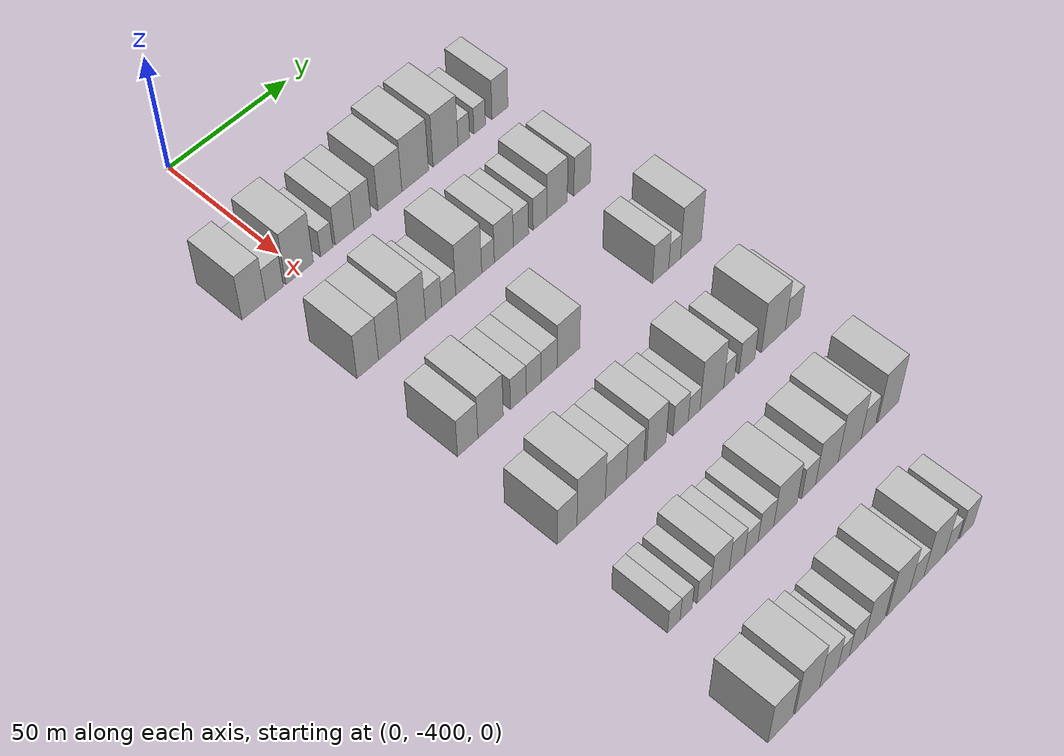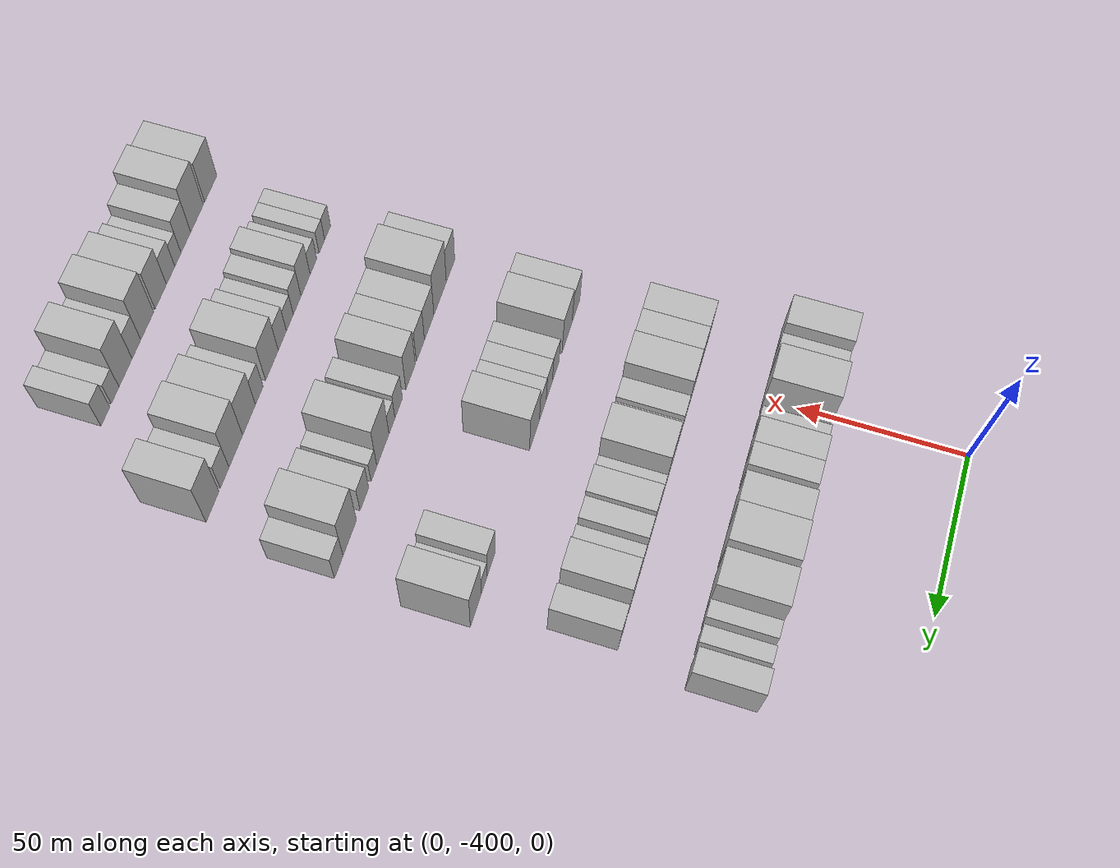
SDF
<sdf version="1.6">
 <world name="default">
  <model name="building_20">
   <static>1</static>
   <pose>50.0000 -419.3856 0 0.000000 0.000000 0.000000</pose>
   <link name="link">
    <pose>0 0 10.50 0 0 0</pose>
    <collision name="collision"><geometry><box><size>20.0000 9.5082 21.0000</size></box></geometry></collision>
    <visual name="visual">
     <cast_shadows>0</cast_shadows>
     <geometry><box><size>20.0000 9.5082 21.0000</size></box></geometry>
     <material>
      <script>
       <uri>model://HANNAS_wall/materials/scripts</uri>
       <uri>model://HANNAS_wall/materials/textures</uri>
       <name>vrc/HANNAS_wall</name>
      </script>
     </material>
    </visual>
   </link>
  </model>
  <model name="building_21">
   <static>1</static>
   <pose>50.0000 -411.0206 0 0.000000 0.000000 0.000000</pose>
   <link name="link">
    <pose>0 0 7.50 0 0 0</pose>
    <collision name="collision"><geometry><box><size>20.0000 7.2218 15.0000</size></box></geometry></collision>
    <visual name="visual">
     <cast_shadows>0</cast_shadows>
     <geometry><box><size>20.0000 7.2218 15.0000</size></box></geometry>
     <material>
      <script>
       <uri>model://HANNAS_wall/materials/scripts</uri>
       <uri>model://HANNAS_wall/materials/textures</uri>
       <name>vrc/HANNAS_wall</name>
      </script>
     </material>
    </visual>
   </link>
  </model>
  <model name="building_22">
   <static>1</static>
   <pose>50.0000 -400.7315 0 0.000000 0.000000 0.000000</pose>
   <link name="link">
    <pose>0 0 12.00 0 0 0</pose>
    <collision name="collision"><geometry><box><size>20.0000 11.3565 24.0000</size></box></geometry></collision>
    <visual name="visual">
     <cast_shadows>0</cast_shadows>
     <geometry><box><size>20.0000 11.3565 24.0000</size></box></geometry>
     <material>
      <script>
       <uri>model://HANNAS_wall/materials/scripts</uri>
       <uri>model://HANNAS_wall/materials/textures</uri>
       <name>vrc/HANNAS_wall</name>
      </script>
     </material>
    </visual>
   </link>
  </model>
  <model name="building_23">
   <static>1</static>
   <pose>50.0000 -389.5145 0 0.000000 0.000000 0.000000</pose>
   <link name="link">
    <pose>0 0 6.00 0 0 0</pose>
    <collision name="collision"><geometry><box><size>20.0000 5.0775 12.0000</size></box></geometry></collision>
    <visual name="visual">
     <cast_shadows>0</cast_shadows>
     <geometry><box><size>20.0000 5.0775 12.0000</size></box></geometry>
     <material>
      <script>
       <uri>model://HANNAS_wall/materials/scripts</uri>
       <uri>model://HANNAS_wall/materials/textures</uri>
       <name>vrc/HANNAS_wall</name>
      </script>
     </material>
    </visual>
   </link>
  </model>
  <model name="building_24">
   <static>1</static>
   <pose>50.0000 -382.0043 0 0.000000 0.000000 0.000000</pose>
   <link name="link">
    <pose>0 0 9.00 0 0 0</pose>
    <collision name="collision"><geometry><box><size>20.0000 7.9430 18.0000</size></box></geometry></collision>
    <visual name="visual">
     <cast_shadows>0</cast_shadows>
     <geometry><box><size>20.0000 7.9430 18.0000</size></box></geometry>
     <material>
      <script>
       <uri>model://HANNAS_wall/materials/scripts</uri>
       <uri>model://HANNAS_wall/materials/textures</uri>
       <name>vrc/HANNAS_wall</name>
      </script>
     </material>
    </visual>
   </link>
  </model>
  <model name="building_25">
   <static>1</static>
   <pose>50.0000 -374.4099 0 0.000000 0.000000 0.000000</pose>
   <link name="link">
    <pose>0 0 9.00 0 0 0</pose>
    <collision name="collision"><geometry><box><size>20.0000 7.2458 18.0000</size></box></geometry></collision>
    <visual name="visual">
     <cast_shadows>0</cast_shadows>
     <geometry><box><size>20.0000 7.2458 18.0000</size></box></geometry>
     <material>
      <script>
       <uri>model://HANNAS_wall/materials/scripts</uri>
       <uri>model://HANNAS_wall/materials/textures</uri>
       <name>vrc/HANNAS_wall</name>
      </script>
     </material>
    </visual>
   </link>
  </model>
  <model name="building_26">
   <static>1</static>
   <pose>50.0000 -362.6268 0 0.000000 0.000000 0.000000</pose>
   <link name="link">
    <pose>0 0 10.50 0 0 0</pose>
    <collision name="collision"><geometry><box><size>20.0000 10.3205 21.0000</size></box></geometry></collision>
    <visual name="visual">
     <cast_shadows>0</cast_shadows>
     <geometry><box><size>20.0000 10.3205 21.0000</size></box></geometry>
     <material>
      <script>
       <uri>model://HANNAS_wall/materials/scripts</uri>
       <uri>model://HANNAS_wall/materials/textures</uri>
       <name>vrc/HANNAS_wall</name>
      </script>
     </material>
    </visual>
   </link>
  </model>
  <model name="building_27">
   <static>1</static>
   <pose>50.0000 -351.6223 0 0.000000 0.000000 0.000000</pose>
   <link name="link">
    <pose>0 0 12.00 0 0 0</pose>
    <collision name="collision"><geometry><box><size>20.0000 11.6884 24.0000</size></box></geometry></collision>
    <visual name="visual">
     <cast_shadows>0</cast_shadows>
     <geometry><box><size>20.0000 11.6884 24.0000</size></box></geometry>
     <material>
      <script>
       <uri>model://HANNAS_wall/materials/scripts</uri>
       <uri>model://HANNAS_wall/materials/textures</uri>
       <name>vrc/HANNAS_wall</name>
      </script>
     </material>
    </visual>
   </link>
  </model>
  <model name="building_28">
   <static>1</static>
   <pose>50.0000 -338.2226 0 0.000000 0.000000 0.000000</pose>
   <link name="link">
    <pose>0 0 12.00 0 0 0</pose>
    <collision name="collision"><geometry><box><size>20.0000 11.1111 24.0000</size></box></geometry></collision>
    <visual name="visual">
     <cast_shadows>0</cast_shadows>
     <geometry><box><size>20.0000 11.1111 24.0000</size></box></geometry>
     <material>
      <script>
       <uri>model://HANNAS_wall/materials/scripts</uri>
       <uri>model://HANNAS_wall/materials/textures</uri>
       <name>vrc/HANNAS_wall</name>
      </script>
     </material>
    </visual>
   </link>
  </model>
  <model name="building_29">
   <static>1</static>
   <pose>50.0000 -330.0581 0 0.000000 0.000000 0.000000</pose>
   <link name="link">
    <pose>0 0 6.00 0 0 0</pose>
    <collision name="collision"><geometry><box><size>20.0000 5.2180 12.0000</size></box></geometry></collision>
    <visual name="visual">
     <cast_shadows>0</cast_shadows>
     <geometry><box><size>20.0000 5.2180 12.0000</size></box></geometry>
     <material>
      <script>
       <uri>model://HANNAS_wall/materials/scripts</uri>
       <uri>model://HANNAS_wall/materials/textures</uri>
       <name>vrc/HANNAS_wall</name>
      </script>
     </material>
    </visual>
   </link>
  </model>
  <model name="building_30">
   <static>1</static>
   <pose>50.0000 -322.8479 0 0.000000 0.000000 0.000000</pose>
   <link name="link">
    <pose>0 0 6.00 0 0 0</pose>
    <collision name="collision"><geometry><box><size>20.0000 5.2024 12.0000</size></box></geometry></collision>
    <visual name="visual">
     <cast_shadows>0</cast_shadows>
     <geometry><box><size>20.0000 5.2024 12.0000</size></box></geometry>
     <material>
      <script>
       <uri>model://HANNAS_wall/materials/scripts</uri>
       <uri>model://HANNAS_wall/materials/textures</uri>
       <name>vrc/HANNAS_wall</name>
      </script>
     </material>
    </visual>
   </link>
  </model>
  <model name="building_31">
   <static>1</static>
   <pose>50.0000 -313.6029 0 0.000000 0.000000 0.000000</pose>
   <link name="link">
    <pose>0 0 9.00 0 0 0</pose>
    <collision name="collision"><geometry><box><size>20.0000 7.2876 18.0000</size></box></geometry></collision>
    <visual name="visual">
     <cast_shadows>0</cast_shadows>
     <geometry><box><size>20.0000 7.2876 18.0000</size></box></geometry>
     <material>
      <script>
       <uri>model://HANNAS_wall/materials/scripts</uri>
       <uri>model://HANNAS_wall/materials/textures</uri>
       <name>vrc/HANNAS_wall</name>
      </script>
     </material>
    </visual>
   </link>
  </model>
  <model name="building_163">
   <static>1</static>
   <pose>90.0000 -411.3350 0 0.000000 0.000000 0.000000</pose>
   <link name="link">
    <pose>0 0 10.50 0 0 0</pose>
    <collision name="collision"><geometry><box><size>20.0000 8.7779 21.0000</size></box></geometry></collision>
    <visual name="visual">
     <cast_shadows>0</cast_shadows>
     <geometry><box><size>20.0000 8.7779 21.0000</size></box></geometry>
     <material>
      <script>
       <uri>model://HANNAS_wall/materials/scripts</uri>
       <uri>model://HANNAS_wall/materials/textures</uri>
       <name>vrc/HANNAS_wall</name>
      </script>
     </material>
    </visual>
   </link>
  </model>
  <model name="building_164">
   <static>1</static>
   <pose>90.0000 -402.4201 0 0.000000 0.000000 0.000000</pose>
   <link name="link">
    <pose>0 0 10.50 0 0 0</pose>
    <collision name="collision"><geometry><box><size>20.0000 9.0518 21.0000</size></box></geometry></collision>
    <visual name="visual">
     <cast_shadows>0</cast_shadows>
     <geometry><box><size>20.0000 9.0518 21.0000</size></box></geometry>
     <material>
      <script>
       <uri>model://HANNAS_wall/materials/scripts</uri>
       <uri>model://HANNAS_wall/materials/textures</uri>
       <name>vrc/HANNAS_wall</name>
      </script>
     </material>
    </visual>
   </link>
  </model>
  <model name="building_165">
   <static>1</static>
   <pose>90.0000 -392.6745 0 0.000000 0.000000 0.000000</pose>
   <link name="link">
    <pose>0 0 12.00 0 0 0</pose>
    <collision name="collision"><geometry><box><size>20.0000 10.4394 24.0000</size></box></geometry></collision>
    <visual name="visual">
     <cast_shadows>0</cast_shadows>
     <geometry><box><size>20.0000 10.4394 24.0000</size></box></geometry>
     <material>
      <script>
       <uri>model://HANNAS_wall/materials/scripts</uri>
       <uri>model://HANNAS_wall/materials/textures</uri>
       <name>vrc/HANNAS_wall</name>
      </script>
     </material>
    </visual>
   </link>
  </model>
  <model name="building_166">
   <static>1</static>
   <pose>90.0000 -384.0885 0 0.000000 0.000000 0.000000</pose>
   <link name="link">
    <pose>0 0 7.50 0 0 0</pose>
    <collision name="collision"><geometry><box><size>20.0000 6.7326 15.0000</size></box></geometry></collision>
    <visual name="visual">
     <cast_shadows>0</cast_shadows>
     <geometry><box><size>20.0000 6.7326 15.0000</size></box></geometry>
     <material>
      <script>
       <uri>model://HANNAS_wall/materials/scripts</uri>
       <uri>model://HANNAS_wall/materials/textures</uri>
       <name>vrc/HANNAS_wall</name>
      </script>
     </material>
    </visual>
   </link>
  </model>
  <model name="building_167">
   <static>1</static>
   <pose>90.0000 -377.7272 0 0.000000 0.000000 0.000000</pose>
   <link name="link">
    <pose>0 0 6.00 0 0 0</pose>
    <collision name="collision"><geometry><box><size>20.0000 5.9901 12.0000</size></box></geometry></collision>
    <visual name="visual">
     <cast_shadows>0</cast_shadows>
     <geometry><box><size>20.0000 5.9901 12.0000</size></box></geometry>
     <material>
      <script>
       <uri>model://HANNAS_wall/materials/scripts</uri>
       <uri>model://HANNAS_wall/materials/textures</uri>
       <name>vrc/HANNAS_wall</name>
      </script>
     </material>
    </visual>
   </link>
  </model>
  <model name="building_168">
   <static>1</static>
   <pose>90.0000 -369.1563 0 0.000000 0.000000 0.000000</pose>
   <link name="link">
    <pose>0 0 12.00 0 0 0</pose>
    <collision name="collision"><geometry><box><size>20.0000 11.1517 24.0000</size></box></geometry></collision>
    <visual name="visual">
     <cast_shadows>0</cast_shadows>
     <geometry><box><size>20.0000 11.1517 24.0000</size></box></geometry>
     <material>
      <script>
       <uri>model://HANNAS_wall/materials/scripts</uri>
       <uri>model://HANNAS_wall/materials/textures</uri>
       <name>vrc/HANNAS_wall</name>
      </script>
     </material>
    </visual>
   </link>
  </model>
  <model name="building_169">
   <static>1</static>
   <pose>90.0000 -360.8355 0 0.000000 0.000000 0.000000</pose>
   <link name="link">
    <pose>0 0 6.00 0 0 0</pose>
    <collision name="collision"><geometry><box><size>20.0000 5.4899 12.0000</size></box></geometry></collision>
    <visual name="visual">
     <cast_shadows>0</cast_shadows>
     <geometry><box><size>20.0000 5.4899 12.0000</size></box></geometry>
     <material>
      <script>
       <uri>model://HANNAS_wall/materials/scripts</uri>
       <uri>model://HANNAS_wall/materials/textures</uri>
       <name>vrc/HANNAS_wall</name>
      </script>
     </material>
    </visual>
   </link>
  </model>
  <model name="building_170">
   <static>1</static>
   <pose>90.0000 -353.9241 0 0.000000 0.000000 0.000000</pose>
   <link name="link">
    <pose>0 0 9.00 0 0 0</pose>
    <collision name="collision"><geometry><box><size>20.0000 8.3328 18.0000</size></box></geometry></collision>
    <visual name="visual">
     <cast_shadows>0</cast_shadows>
     <geometry><box><size>20.0000 8.3328 18.0000</size></box></geometry>
     <material>
      <script>
       <uri>model://HANNAS_wall/materials/scripts</uri>
       <uri>model://HANNAS_wall/materials/textures</uri>
       <name>vrc/HANNAS_wall</name>
      </script>
     </material>
    </visual>
   </link>
  </model>
  <model name="building_171">
   <static>1</static>
   <pose>90.0000 -346.3861 0 0.000000 0.000000 0.000000</pose>
   <link name="link">
    <pose>0 0 7.50 0 0 0</pose>
    <collision name="collision"><geometry><box><size>20.0000 6.7433 15.0000</size></box></geometry></collision>
    <visual name="visual">
     <cast_shadows>0</cast_shadows>
     <geometry><box><size>20.0000 6.7433 15.0000</size></box></geometry>
     <material>
      <script>
       <uri>model://HANNAS_wall/materials/scripts</uri>
       <uri>model://HANNAS_wall/materials/textures</uri>
       <name>vrc/HANNAS_wall</name>
      </script>
     </material>
    </visual>
   </link>
  </model>
  <model name="building_172">
   <static>1</static>
   <pose>90.0000 -337.9804 0 0.000000 0.000000 0.000000</pose>
   <link name="link">
    <pose>0 0 7.50 0 0 0</pose>
    <collision name="collision"><geometry><box><size>20.0000 6.0680 15.0000</size></box></geometry></collision>
    <visual name="visual">
     <cast_shadows>0</cast_shadows>
     <geometry><box><size>20.0000 6.0680 15.0000</size></box></geometry>
     <material>
      <script>
       <uri>model://HANNAS_wall/materials/scripts</uri>
       <uri>model://HANNAS_wall/materials/textures</uri>
       <name>vrc/HANNAS_wall</name>
      </script>
     </material>
    </visual>
   </link>
  </model>
  <model name="building_173">
   <static>1</static>
   <pose>90.0000 -330.2896 0 0.000000 0.000000 0.000000</pose>
   <link name="link">
    <pose>0 0 10.50 0 0 0</pose>
    <collision name="collision"><geometry><box><size>20.0000 9.3135 21.0000</size></box></geometry></collision>
    <visual name="visual">
     <cast_shadows>0</cast_shadows>
     <geometry><box><size>20.0000 9.3135 21.0000</size></box></geometry>
     <material>
      <script>
       <uri>model://HANNAS_wall/materials/scripts</uri>
       <uri>model://HANNAS_wall/materials/textures</uri>
       <name>vrc/HANNAS_wall</name>
      </script>
     </material>
    </visual>
   </link>
  </model>
  <model name="building_174">
   <static>1</static>
   <pose>90.0000 -318.8426 0 0.000000 0.000000 0.000000</pose>
   <link name="link">
    <pose>0 0 9.00 0 0 0</pose>
    <collision name="collision"><geometry><box><size>20.0000 7.5806 18.0000</size></box></geometry></collision>
    <visual name="visual">
     <cast_shadows>0</cast_shadows>
     <geometry><box><size>20.0000 7.5806 18.0000</size></box></geometry>
     <material>
      <script>
       <uri>model://HANNAS_wall/materials/scripts</uri>
       <uri>model://HANNAS_wall/materials/textures</uri>
       <name>vrc/HANNAS_wall</name>
      </script>
     </material>
    </visual>
   </link>
  </model>
  <model name="building_303">
   <static>1</static>
   <pose>130.0000 -410.9460 0 0.000000 0.000000 0.000000</pose>
   <link name="link">
    <pose>0 0 9.00 0 0 0</pose>
    <collision name="collision"><geometry><box><size>20.0000 8.3325 18.0000</size></box></geometry></collision>
    <visual name="visual">
     <cast_shadows>0</cast_shadows>
     <geometry><box><size>20.0000 8.3325 18.0000</size></box></geometry>
     <material>
      <script>
       <uri>model://HANNAS_wall/materials/scripts</uri>
       <uri>model://HANNAS_wall/materials/textures</uri>
       <name>vrc/HANNAS_wall</name>
      </script>
     </material>
    </visual>
   </link>
  </model>
  <model name="building_304">
   <static>1</static>
   <pose>130.0000 -401.5577 0 0.000000 0.000000 0.000000</pose>
   <link name="link">
    <pose>0 0 10.50 0 0 0</pose>
    <collision name="collision"><geometry><box><size>20.0000 10.4440 21.0000</size></box></geometry></collision>
    <visual name="visual">
     <cast_shadows>0</cast_shadows>
     <geometry><box><size>20.0000 10.4440 21.0000</size></box></geometry>
     <material>
      <script>
       <uri>model://HANNAS_wall/materials/scripts</uri>
       <uri>model://HANNAS_wall/materials/textures</uri>
       <name>vrc/HANNAS_wall</name>
      </script>
     </material>
    </visual>
   </link>
  </model>
  <model name="building_305">
   <static>1</static>
   <pose>130.0000 -390.0015 0 0.000000 0.000000 0.000000</pose>
   <link name="link">
    <pose>0 0 7.50 0 0 0</pose>
    <collision name="collision"><geometry><box><size>20.0000 6.6683 15.0000</size></box></geometry></collision>
    <visual name="visual">
     <cast_shadows>0</cast_shadows>
     <geometry><box><size>20.0000 6.6683 15.0000</size></box></geometry>
     <material>
      <script>
       <uri>model://HANNAS_wall/materials/scripts</uri>
       <uri>model://HANNAS_wall/materials/textures</uri>
       <name>vrc/HANNAS_wall</name>
      </script>
     </material>
    </visual>
   </link>
  </model>
  <model name="building_306">
   <static>1</static>
   <pose>130.0000 -383.5446 0 0.000000 0.000000 0.000000</pose>
   <link name="link">
    <pose>0 0 7.50 0 0 0</pose>
    <collision name="collision"><geometry><box><size>20.0000 6.2456 15.0000</size></box></geometry></collision>
    <visual name="visual">
     <cast_shadows>0</cast_shadows>
     <geometry><box><size>20.0000 6.2456 15.0000</size></box></geometry>
     <material>
      <script>
       <uri>model://HANNAS_wall/materials/scripts</uri>
       <uri>model://HANNAS_wall/materials/textures</uri>
       <name>vrc/HANNAS_wall</name>
      </script>
     </material>
    </visual>
   </link>
  </model>
  <model name="building_307">
   <static>1</static>
   <pose>130.0000 -377.0448 0 0.000000 0.000000 0.000000</pose>
   <link name="link">
    <pose>0 0 7.50 0 0 0</pose>
    <collision name="collision"><geometry><box><size>20.0000 6.7538 15.0000</size></box></geometry></collision>
    <visual name="visual">
     <cast_shadows>0</cast_shadows>
     <geometry><box><size>20.0000 6.7538 15.0000</size></box></geometry>
     <material>
      <script>
       <uri>model://HANNAS_wall/materials/scripts</uri>
       <uri>model://HANNAS_wall/materials/textures</uri>
       <name>vrc/HANNAS_wall</name>
      </script>
     </material>
    </visual>
   </link>
  </model>
  <model name="building_308">
   <static>1</static>
   <pose>130.0000 -368.7907 0 0.000000 0.000000 0.000000</pose>
   <link name="link">
    <pose>0 0 10.50 0 0 0</pose>
    <collision name="collision"><geometry><box><size>20.0000 9.7545 21.0000</size></box></geometry></collision>
    <visual name="visual">
     <cast_shadows>0</cast_shadows>
     <geometry><box><size>20.0000 9.7545 21.0000</size></box></geometry>
     <material>
      <script>
       <uri>model://HANNAS_wall/materials/scripts</uri>
       <uri>model://HANNAS_wall/materials/textures</uri>
       <name>vrc/HANNAS_wall</name>
      </script>
     </material>
    </visual>
   </link>
  </model>
  <model name="building_309">
   <static>1</static>
   <pose>130.0000 -327.8677 0 0.000000 0.000000 0.000000</pose>
   <link name="link">
    <pose>0 0 9.00 0 0 0</pose>
    <collision name="collision"><geometry><box><size>20.0000 7.3639 18.0000</size></box></geometry></collision>
    <visual name="visual">
     <cast_shadows>0</cast_shadows>
     <geometry><box><size>20.0000 7.3639 18.0000</size></box></geometry>
     <material>
      <script>
       <uri>model://HANNAS_wall/materials/scripts</uri>
       <uri>model://HANNAS_wall/materials/textures</uri>
       <name>vrc/HANNAS_wall</name>
      </script>
     </material>
    </visual>
   </link>
  </model>
  <model name="building_310">
   <static>1</static>
   <pose>130.0000 -321.5015 0 0.000000 0.000000 0.000000</pose>
   <link name="link">
    <pose>0 0 6.00 0 0 0</pose>
    <collision name="collision"><geometry><box><size>20.0000 5.3685 12.0000</size></box></geometry></collision>
    <visual name="visual">
     <cast_shadows>0</cast_shadows>
     <geometry><box><size>20.0000 5.3685 12.0000</size></box></geometry>
     <material>
      <script>
       <uri>model://HANNAS_wall/materials/scripts</uri>
       <uri>model://HANNAS_wall/materials/textures</uri>
       <name>vrc/HANNAS_wall</name>
      </script>
     </material>
    </visual>
   </link>
  </model>
  <model name="building_311">
   <static>1</static>
   <pose>130.0000 -313.9737 0 0.000000 0.000000 0.000000</pose>
   <link name="link">
    <pose>0 0 12.00 0 0 0</pose>
    <collision name="collision"><geometry><box><size>20.0000 9.6870 24.0000</size></box></geometry></collision>
    <visual name="visual">
     <cast_shadows>0</cast_shadows>
     <geometry><box><size>20.0000 9.6870 24.0000</size></box></geometry>
     <material>
      <script>
       <uri>model://HANNAS_wall/materials/scripts</uri>
       <uri>model://HANNAS_wall/materials/textures</uri>
       <name>vrc/HANNAS_wall</name>
      </script>
     </material>
    </visual>
   </link>
  </model>
  <model name="building_440">
   <static>1</static>
   <pose>170.0000 -412.9344 0 0.000000 0.000000 0.000000</pose>
   <link name="link">
    <pose>0 0 9.00 0 0 0</pose>
    <collision name="collision"><geometry><box><size>20.0000 8.0423 18.0000</size></box></geometry></collision>
    <visual name="visual">
     <cast_shadows>0</cast_shadows>
     <geometry><box><size>20.0000 8.0423 18.0000</size></box></geometry>
     <material>
      <script>
       <uri>model://HANNAS_wall/materials/scripts</uri>
       <uri>model://HANNAS_wall/materials/textures</uri>
       <name>vrc/HANNAS_wall</name>
      </script>
     </material>
    </visual>
   </link>
  </model>
  <model name="building_441">
   <static>1</static>
   <pose>170.0000 -403.0468 0 0.000000 0.000000 0.000000</pose>
   <link name="link">
    <pose>0 0 12.00 0 0 0</pose>
    <collision name="collision"><geometry><box><size>20.0000 11.7330 24.0000</size></box></geometry></collision>
    <visual name="visual">
     <cast_shadows>0</cast_shadows>
     <geometry><box><size>20.0000 11.7330 24.0000</size></box></geometry>
     <material>
      <script>
       <uri>model://HANNAS_wall/materials/scripts</uri>
       <uri>model://HANNAS_wall/materials/textures</uri>
       <name>vrc/HANNAS_wall</name>
      </script>
     </material>
    </visual>
   </link>
  </model>
  <model name="building_442">
   <static>1</static>
   <pose>170.0000 -392.8047 0 0.000000 0.000000 0.000000</pose>
   <link name="link">
    <pose>0 0 9.00 0 0 0</pose>
    <collision name="collision"><geometry><box><size>20.0000 8.7513 18.0000</size></box></geometry></collision>
    <visual name="visual">
     <cast_shadows>0</cast_shadows>
     <geometry><box><size>20.0000 8.7513 18.0000</size></box></geometry>
     <material>
      <script>
       <uri>model://HANNAS_wall/materials/scripts</uri>
       <uri>model://HANNAS_wall/materials/textures</uri>
       <name>vrc/HANNAS_wall</name>
      </script>
     </material>
    </visual>
   </link>
  </model>
  <model name="building_443">
   <static>1</static>
   <pose>170.0000 -384.7107 0 0.000000 0.000000 0.000000</pose>
   <link name="link">
    <pose>0 0 9.00 0 0 0</pose>
    <collision name="collision"><geometry><box><size>20.0000 7.4366 18.0000</size></box></geometry></collision>
    <visual name="visual">
     <cast_shadows>0</cast_shadows>
     <geometry><box><size>20.0000 7.4366 18.0000</size></box></geometry>
     <material>
      <script>
       <uri>model://HANNAS_wall/materials/scripts</uri>
       <uri>model://HANNAS_wall/materials/textures</uri>
       <name>vrc/HANNAS_wall</name>
      </script>
     </material>
    </visual>
   </link>
  </model>
  <model name="building_444">
   <static>1</static>
   <pose>170.0000 -375.7370 0 0.000000 0.000000 0.000000</pose>
   <link name="link">
    <pose>0 0 10.50 0 0 0</pose>
    <collision name="collision"><geometry><box><size>20.0000 8.5108 21.0000</size></box></geometry></collision>
    <visual name="visual">
     <cast_shadows>0</cast_shadows>
     <geometry><box><size>20.0000 8.5108 21.0000</size></box></geometry>
     <material>
      <script>
       <uri>model://HANNAS_wall/materials/scripts</uri>
       <uri>model://HANNAS_wall/materials/textures</uri>
       <name>vrc/HANNAS_wall</name>
      </script>
     </material>
    </visual>
   </link>
  </model>
  <model name="building_445">
   <static>1</static>
   <pose>170.0000 -365.1626 0 0.000000 0.000000 0.000000</pose>
   <link name="link">
    <pose>0 0 7.50 0 0 0</pose>
    <collision name="collision"><geometry><box><size>20.0000 6.6380 15.0000</size></box></geometry></collision>
    <visual name="visual">
     <cast_shadows>0</cast_shadows>
     <geometry><box><size>20.0000 6.6380 15.0000</size></box></geometry>
     <material>
      <script>
       <uri>model://HANNAS_wall/materials/scripts</uri>
       <uri>model://HANNAS_wall/materials/textures</uri>
       <name>vrc/HANNAS_wall</name>
      </script>
     </material>
    </visual>
   </link>
  </model>
  <model name="building_446">
   <static>1</static>
   <pose>170.0000 -359.2382 0 0.000000 0.000000 0.000000</pose>
   <link name="link">
    <pose>0 0 6.00 0 0 0</pose>
    <collision name="collision"><geometry><box><size>20.0000 5.2109 12.0000</size></box></geometry></collision>
    <visual name="visual">
     <cast_shadows>0</cast_shadows>
     <geometry><box><size>20.0000 5.2109 12.0000</size></box></geometry>
     <material>
      <script>
       <uri>model://HANNAS_wall/materials/scripts</uri>
       <uri>model://HANNAS_wall/materials/textures</uri>
       <name>vrc/HANNAS_wall</name>
      </script>
     </material>
    </visual>
   </link>
  </model>
  <model name="building_447">
   <static>1</static>
   <pose>170.0000 -351.3835 0 0.000000 0.000000 0.000000</pose>
   <link name="link">
    <pose>0 0 12.00 0 0 0</pose>
    <collision name="collision"><geometry><box><size>20.0000 10.4986 24.0000</size></box></geometry></collision>
    <visual name="visual">
     <cast_shadows>0</cast_shadows>
     <geometry><box><size>20.0000 10.4986 24.0000</size></box></geometry>
     <material>
      <script>
       <uri>model://HANNAS_wall/materials/scripts</uri>
       <uri>model://HANNAS_wall/materials/textures</uri>
       <name>vrc/HANNAS_wall</name>
      </script>
     </material>
    </visual>
   </link>
  </model>
  <model name="building_448">
   <static>1</static>
   <pose>170.0000 -343.6859 0 0.000000 0.000000 0.000000</pose>
   <link name="link">
    <pose>0 0 6.00 0 0 0</pose>
    <collision name="collision"><geometry><box><size>20.0000 4.8965 12.0000</size></box></geometry></collision>
    <visual name="visual">
     <cast_shadows>0</cast_shadows>
     <geometry><box><size>20.0000 4.8965 12.0000</size></box></geometry>
     <material>
      <script>
       <uri>model://HANNAS_wall/materials/scripts</uri>
       <uri>model://HANNAS_wall/materials/textures</uri>
       <name>vrc/HANNAS_wall</name>
      </script>
     </material>
    </visual>
   </link>
  </model>
  <model name="building_449">
   <static>1</static>
   <pose>170.0000 -335.6200 0 0.000000 0.000000 0.000000</pose>
   <link name="link">
    <pose>0 0 7.50 0 0 0</pose>
    <collision name="collision"><geometry><box><size>20.0000 7.2353 15.0000</size></box></geometry></collision>
    <visual name="visual">
     <cast_shadows>0</cast_shadows>
     <geometry><box><size>20.0000 7.2353 15.0000</size></box></geometry>
     <material>
      <script>
       <uri>model://HANNAS_wall/materials/scripts</uri>
       <uri>model://HANNAS_wall/materials/textures</uri>
       <name>vrc/HANNAS_wall</name>
      </script>
     </material>
    </visual>
   </link>
  </model>
  <model name="building_450">
   <static>1</static>
   <pose>170.0000 -323.4892 0 0.000000 0.000000 0.000000</pose>
   <link name="link">
    <pose>0 0 12.00 0 0 0</pose>
    <collision name="collision"><geometry><box><size>20.0000 11.0264 24.0000</size></box></geometry></collision>
    <visual name="visual">
     <cast_shadows>0</cast_shadows>
     <geometry><box><size>20.0000 11.0264 24.0000</size></box></geometry>
     <material>
      <script>
       <uri>model://HANNAS_wall/materials/scripts</uri>
       <uri>model://HANNAS_wall/materials/textures</uri>
       <name>vrc/HANNAS_wall</name>
      </script>
     </material>
    </visual>
   </link>
  </model>
  <model name="building_451">
   <static>1</static>
   <pose>170.0000 -314.5162 0 0.000000 0.000000 0.000000</pose>
   <link name="link">
    <pose>0 0 7.50 0 0 0</pose>
    <collision name="collision"><geometry><box><size>20.0000 6.9195 15.0000</size></box></geometry></collision>
    <visual name="visual">
     <cast_shadows>0</cast_shadows>
     <geometry><box><size>20.0000 6.9195 15.0000</size></box></geometry>
     <material>
      <script>
       <uri>model://HANNAS_wall/materials/scripts</uri>
       <uri>model://HANNAS_wall/materials/textures</uri>
       <name>vrc/HANNAS_wall</name>
      </script>
     </material>
    </visual>
   </link>
  </model>
  <model name="building_580">
   <static>1</static>
   <pose>210.0000 -414.2958 0 0.000000 0.000000 0.000000</pose>
   <link name="link">
    <pose>0 0 6.00 0 0 0</pose>
    <collision name="collision"><geometry><box><size>20.0000 5.1976 12.0000</size></box></geometry></collision>
    <visual name="visual">
     <cast_shadows>0</cast_shadows>
     <geometry><box><size>20.0000 5.1976 12.0000</size></box></geometry>
     <material>
      <script>
       <uri>model://HANNAS_wall/materials/scripts</uri>
       <uri>model://HANNAS_wall/materials/textures</uri>
       <name>vrc/HANNAS_wall</name>
      </script>
     </material>
    </visual>
   </link>
  </model>
  <model name="building_581">
   <static>1</static>
   <pose>210.0000 -409.2414 0 0.000000 0.000000 0.000000</pose>
   <link name="link">
    <pose>0 0 6.00 0 0 0</pose>
    <collision name="collision"><geometry><box><size>20.0000 4.9113 12.0000</size></box></geometry></collision>
    <visual name="visual">
     <cast_shadows>0</cast_shadows>
     <geometry><box><size>20.0000 4.9113 12.0000</size></box></geometry>
     <material>
      <script>
       <uri>model://HANNAS_wall/materials/scripts</uri>
       <uri>model://HANNAS_wall/materials/textures</uri>
       <name>vrc/HANNAS_wall</name>
      </script>
     </material>
    </visual>
   </link>
  </model>
  <model name="building_582">
   <static>1</static>
   <pose>210.0000 -401.9307 0 0.000000 0.000000 0.000000</pose>
   <link name="link">
    <pose>0 0 6.00 0 0 0</pose>
    <collision name="collision"><geometry><box><size>20.0000 5.7101 12.0000</size></box></geometry></collision>
    <visual name="visual">
     <cast_shadows>0</cast_shadows>
     <geometry><box><size>20.0000 5.7101 12.0000</size></box></geometry>
     <material>
      <script>
       <uri>model://HANNAS_wall/materials/scripts</uri>
       <uri>model://HANNAS_wall/materials/textures</uri>
       <name>vrc/HANNAS_wall</name>
      </script>
     </material>
    </visual>
   </link>
  </model>
  <model name="building_583">
   <static>1</static>
   <pose>210.0000 -395.1767 0 0.000000 0.000000 0.000000</pose>
   <link name="link">
    <pose>0 0 9.00 0 0 0</pose>
    <collision name="collision"><geometry><box><size>20.0000 7.7979 18.0000</size></box></geometry></collision>
    <visual name="visual">
     <cast_shadows>0</cast_shadows>
     <geometry><box><size>20.0000 7.7979 18.0000</size></box></geometry>
     <material>
      <script>
       <uri>model://HANNAS_wall/materials/scripts</uri>
       <uri>model://HANNAS_wall/materials/textures</uri>
       <name>vrc/HANNAS_wall</name>
      </script>
     </material>
    </visual>
   </link>
  </model>
  <model name="building_584">
   <static>1</static>
   <pose>210.0000 -388.0186 0 0.000000 0.000000 0.000000</pose>
   <link name="link">
    <pose>0 0 7.50 0 0 0</pose>
    <collision name="collision"><geometry><box><size>20.0000 6.5182 15.0000</size></box></geometry></collision>
    <visual name="visual">
     <cast_shadows>0</cast_shadows>
     <geometry><box><size>20.0000 6.5182 15.0000</size></box></geometry>
     <material>
      <script>
       <uri>model://HANNAS_wall/materials/scripts</uri>
       <uri>model://HANNAS_wall/materials/textures</uri>
       <name>vrc/HANNAS_wall</name>
      </script>
     </material>
    </visual>
   </link>
  </model>
  <model name="building_585">
   <static>1</static>
   <pose>210.0000 -381.8601 0 0.000000 0.000000 0.000000</pose>
   <link name="link">
    <pose>0 0 6.00 0 0 0</pose>
    <collision name="collision"><geometry><box><size>20.0000 5.7988 12.0000</size></box></geometry></collision>
    <visual name="visual">
     <cast_shadows>0</cast_shadows>
     <geometry><box><size>20.0000 5.7988 12.0000</size></box></geometry>
     <material>
      <script>
       <uri>model://HANNAS_wall/materials/scripts</uri>
       <uri>model://HANNAS_wall/materials/textures</uri>
       <name>vrc/HANNAS_wall</name>
      </script>
     </material>
    </visual>
   </link>
  </model>
  <model name="building_586">
   <static>1</static>
   <pose>210.0000 -375.5854 0 0.000000 0.000000 0.000000</pose>
   <link name="link">
    <pose>0 0 7.50 0 0 0</pose>
    <collision name="collision"><geometry><box><size>20.0000 6.7507 15.0000</size></box></geometry></collision>
    <visual name="visual">
     <cast_shadows>0</cast_shadows>
     <geometry><box><size>20.0000 6.7507 15.0000</size></box></geometry>
     <material>
      <script>
       <uri>model://HANNAS_wall/materials/scripts</uri>
       <uri>model://HANNAS_wall/materials/textures</uri>
       <name>vrc/HANNAS_wall</name>
      </script>
     </material>
    </visual>
   </link>
  </model>
  <model name="building_587">
   <static>1</static>
   <pose>210.0000 -367.0543 0 0.000000 0.000000 0.000000</pose>
   <link name="link">
    <pose>0 0 10.50 0 0 0</pose>
    <collision name="collision"><geometry><box><size>20.0000 10.3114 21.0000</size></box></geometry></collision>
    <visual name="visual">
     <cast_shadows>0</cast_shadows>
     <geometry><box><size>20.0000 10.3114 21.0000</size></box></geometry>
     <material>
      <script>
       <uri>model://HANNAS_wall/materials/scripts</uri>
       <uri>model://HANNAS_wall/materials/textures</uri>
       <name>vrc/HANNAS_wall</name>
      </script>
     </material>
    </visual>
   </link>
  </model>
  <model name="building_588">
   <static>1</static>
   <pose>210.0000 -356.8202 0 0.000000 0.000000 0.000000</pose>
   <link name="link">
    <pose>0 0 7.50 0 0 0</pose>
    <collision name="collision"><geometry><box><size>20.0000 6.1569 15.0000</size></box></geometry></collision>
    <visual name="visual">
     <cast_shadows>0</cast_shadows>
     <geometry><box><size>20.0000 6.1569 15.0000</size></box></geometry>
     <material>
      <script>
       <uri>model://HANNAS_wall/materials/scripts</uri>
       <uri>model://HANNAS_wall/materials/textures</uri>
       <name>vrc/HANNAS_wall</name>
      </script>
     </material>
    </visual>
   </link>
  </model>
  <model name="building_589">
   <static>1</static>
   <pose>210.0000 -348.6804 0 0.000000 0.000000 0.000000</pose>
   <link name="link">
    <pose>0 0 10.50 0 0 0</pose>
    <collision name="collision"><geometry><box><size>20.0000 10.1228 21.0000</size></box></geometry></collision>
    <visual name="visual">
     <cast_shadows>0</cast_shadows>
     <geometry><box><size>20.0000 10.1228 21.0000</size></box></geometry>
     <material>
      <script>
       <uri>model://HANNAS_wall/materials/scripts</uri>
       <uri>model://HANNAS_wall/materials/textures</uri>
       <name>vrc/HANNAS_wall</name>
      </script>
     </material>
    </visual>
   </link>
  </model>
  <model name="building_590">
   <static>1</static>
   <pose>210.0000 -338.3629 0 0.000000 0.000000 0.000000</pose>
   <link name="link">
    <pose>0 0 12.00 0 0 0</pose>
    <collision name="collision"><geometry><box><size>20.0000 10.5122 24.0000</size></box></geometry></collision>
    <visual name="visual">
     <cast_shadows>0</cast_shadows>
     <geometry><box><size>20.0000 10.5122 24.0000</size></box></geometry>
     <material>
      <script>
       <uri>model://HANNAS_wall/materials/scripts</uri>
       <uri>model://HANNAS_wall/materials/textures</uri>
       <name>vrc/HANNAS_wall</name>
      </script>
     </material>
    </visual>
   </link>
  </model>
  <model name="building_591">
   <static>1</static>
   <pose>210.0000 -329.7714 0 0.000000 0.000000 0.000000</pose>
   <link name="link">
    <pose>0 0 7.50 0 0 0</pose>
    <collision name="collision"><geometry><box><size>20.0000 6.6707 15.0000</size></box></geometry></collision>
    <visual name="visual">
     <cast_shadows>0</cast_shadows>
     <geometry><box><size>20.0000 6.6707 15.0000</size></box></geometry>
     <material>
      <script>
       <uri>model://HANNAS_wall/materials/scripts</uri>
       <uri>model://HANNAS_wall/materials/textures</uri>
       <name>vrc/HANNAS_wall</name>
      </script>
     </material>
    </visual>
   </link>
  </model>
  <model name="building_592">
   <static>1</static>
   <pose>210.0000 -320.6012 0 0.000000 0.000000 0.000000</pose>
   <link name="link">
    <pose>0 0 12.00 0 0 0</pose>
    <collision name="collision"><geometry><box><size>20.0000 9.6696 24.0000</size></box></geometry></collision>
    <visual name="visual">
     <cast_shadows>0</cast_shadows>
     <geometry><box><size>20.0000 9.6696 24.0000</size></box></geometry>
     <material>
      <script>
       <uri>model://HANNAS_wall/materials/scripts</uri>
       <uri>model://HANNAS_wall/materials/textures</uri>
       <name>vrc/HANNAS_wall</name>
      </script>
     </material>
    </visual>
   </link>
  </model>
  <model name="building_714">
   <static>1</static>
   <pose>250.0000 -418.2215 0 0.000000 0.000000 0.000000</pose>
   <link name="link">
    <pose>0 0 10.50 0 0 0</pose>
    <collision name="collision"><geometry><box><size>20.0000 10.0996 21.0000</size></box></geometry></collision>
    <visual name="visual">
     <cast_shadows>0</cast_shadows>
     <geometry><box><size>20.0000 10.0996 21.0000</size></box></geometry>
     <material>
      <script>
       <uri>model://HANNAS_wall/materials/scripts</uri>
       <uri>model://HANNAS_wall/materials/textures</uri>
       <name>vrc/HANNAS_wall</name>
      </script>
     </material>
    </visual>
   </link>
  </model>
  <model name="building_715">
   <static>1</static>
   <pose>250.0000 -407.0705 0 0.000000 0.000000 0.000000</pose>
   <link name="link">
    <pose>0 0 12.00 0 0 0</pose>
    <collision name="collision"><geometry><box><size>20.0000 10.2024 24.0000</size></box></geometry></collision>
    <visual name="visual">
     <cast_shadows>0</cast_shadows>
     <geometry><box><size>20.0000 10.2024 24.0000</size></box></geometry>
     <material>
      <script>
       <uri>model://HANNAS_wall/materials/scripts</uri>
       <uri>model://HANNAS_wall/materials/textures</uri>
       <name>vrc/HANNAS_wall</name>
      </script>
     </material>
    </visual>
   </link>
  </model>
  <model name="building_716">
   <static>1</static>
   <pose>250.0000 -398.1168 0 0.000000 0.000000 0.000000</pose>
   <link name="link">
    <pose>0 0 9.00 0 0 0</pose>
    <collision name="collision"><geometry><box><size>20.0000 7.7050 18.0000</size></box></geometry></collision>
    <visual name="visual">
     <cast_shadows>0</cast_shadows>
     <geometry><box><size>20.0000 7.7050 18.0000</size></box></geometry>
     <material>
      <script>
       <uri>model://HANNAS_wall/materials/scripts</uri>
       <uri>model://HANNAS_wall/materials/textures</uri>
       <name>vrc/HANNAS_wall</name>
      </script>
     </material>
    </visual>
   </link>
  </model>
  <model name="building_717">
   <static>1</static>
   <pose>250.0000 -391.8246 0 0.000000 0.000000 0.000000</pose>
   <link name="link">
    <pose>0 0 6.00 0 0 0</pose>
    <collision name="collision"><geometry><box><size>20.0000 4.8795 12.0000</size></box></geometry></collision>
    <visual name="visual">
     <cast_shadows>0</cast_shadows>
     <geometry><box><size>20.0000 4.8795 12.0000</size></box></geometry>
     <material>
      <script>
       <uri>model://HANNAS_wall/materials/scripts</uri>
       <uri>model://HANNAS_wall/materials/textures</uri>
       <name>vrc/HANNAS_wall</name>
      </script>
     </material>
    </visual>
   </link>
  </model>
  <model name="building_718">
   <static>1</static>
   <pose>250.0000 -386.1148 0 0.000000 0.000000 0.000000</pose>
   <link name="link">
    <pose>0 0 7.50 0 0 0</pose>
    <collision name="collision"><geometry><box><size>20.0000 6.5399 15.0000</size></box></geometry></collision>
    <visual name="visual">
     <cast_shadows>0</cast_shadows>
     <geometry><box><size>20.0000 6.5399 15.0000</size></box></geometry>
     <material>
      <script>
       <uri>model://HANNAS_wall/materials/scripts</uri>
       <uri>model://HANNAS_wall/materials/textures</uri>
       <name>vrc/HANNAS_wall</name>
      </script>
     </material>
    </visual>
   </link>
  </model>
  <model name="building_719">
   <static>1</static>
   <pose>250.0000 -378.4225 0 0.000000 0.000000 0.000000</pose>
   <link name="link">
    <pose>0 0 10.50 0 0 0</pose>
    <collision name="collision"><geometry><box><size>20.0000 8.8447 21.0000</size></box></geometry></collision>
    <visual name="visual">
     <cast_shadows>0</cast_shadows>
     <geometry><box><size>20.0000 8.8447 21.0000</size></box></geometry>
     <material>
      <script>
       <uri>model://HANNAS_wall/materials/scripts</uri>
       <uri>model://HANNAS_wall/materials/textures</uri>
       <name>vrc/HANNAS_wall</name>
      </script>
     </material>
    </visual>
   </link>
  </model>
  <model name="building_720">
   <static>1</static>
   <pose>250.0000 -368.1143 0 0.000000 0.000000 0.000000</pose>
   <link name="link">
    <pose>0 0 12.00 0 0 0</pose>
    <collision name="collision"><geometry><box><size>20.0000 9.7717 24.0000</size></box></geometry></collision>
    <visual name="visual">
     <cast_shadows>0</cast_shadows>
     <geometry><box><size>20.0000 9.7717 24.0000</size></box></geometry>
     <material>
      <script>
       <uri>model://HANNAS_wall/materials/scripts</uri>
       <uri>model://HANNAS_wall/materials/textures</uri>
       <name>vrc/HANNAS_wall</name>
      </script>
     </material>
    </visual>
   </link>
  </model>
  <model name="building_721">
   <static>1</static>
   <pose>250.0000 -359.9862 0 0.000000 0.000000 0.000000</pose>
   <link name="link">
    <pose>0 0 7.50 0 0 0</pose>
    <collision name="collision"><geometry><box><size>20.0000 6.4845 15.0000</size></box></geometry></collision>
    <visual name="visual">
     <cast_shadows>0</cast_shadows>
     <geometry><box><size>20.0000 6.4845 15.0000</size></box></geometry>
     <material>
      <script>
       <uri>model://HANNAS_wall/materials/scripts</uri>
       <uri>model://HANNAS_wall/materials/textures</uri>
       <name>vrc/HANNAS_wall</name>
      </script>
     </material>
    </visual>
   </link>
  </model>
  <model name="building_722">
   <static>1</static>
   <pose>250.0000 -351.9140 0 0.000000 0.000000 0.000000</pose>
   <link name="link">
    <pose>0 0 12.00 0 0 0</pose>
    <collision name="collision"><geometry><box><size>20.0000 9.6600 24.0000</size></box></geometry></collision>
    <visual name="visual">
     <cast_shadows>0</cast_shadows>
     <geometry><box><size>20.0000 9.6600 24.0000</size></box></geometry>
     <material>
      <script>
       <uri>model://HANNAS_wall/materials/scripts</uri>
       <uri>model://HANNAS_wall/materials/textures</uri>
       <name>vrc/HANNAS_wall</name>
      </script>
     </material>
    </visual>
   </link>
  </model>
  <model name="building_723">
   <static>1</static>
   <pose>250.0000 -344.2334 0 0.000000 0.000000 0.000000</pose>
   <link name="link">
    <pose>0 0 6.00 0 0 0</pose>
    <collision name="collision"><geometry><box><size>20.0000 5.7012 12.0000</size></box></geometry></collision>
    <visual name="visual">
     <cast_shadows>0</cast_shadows>
     <geometry><box><size>20.0000 5.7012 12.0000</size></box></geometry>
     <material>
      <script>
       <uri>model://HANNAS_wall/materials/scripts</uri>
       <uri>model://HANNAS_wall/materials/textures</uri>
       <name>vrc/HANNAS_wall</name>
      </script>
     </material>
    </visual>
   </link>
  </model>
  <model name="building_724">
   <static>1</static>
   <pose>250.0000 -337.1916 0 0.000000 0.000000 0.000000</pose>
   <link name="link">
    <pose>0 0 7.50 0 0 0</pose>
    <collision name="collision"><geometry><box><size>20.0000 6.3825 15.0000</size></box></geometry></collision>
    <visual name="visual">
     <cast_shadows>0</cast_shadows>
     <geometry><box><size>20.0000 6.3825 15.0000</size></box></geometry>
     <material>
      <script>
       <uri>model://HANNAS_wall/materials/scripts</uri>
       <uri>model://HANNAS_wall/materials/textures</uri>
       <name>vrc/HANNAS_wall</name>
      </script>
     </material>
    </visual>
   </link>
  </model>
 </world>
</sdf>
